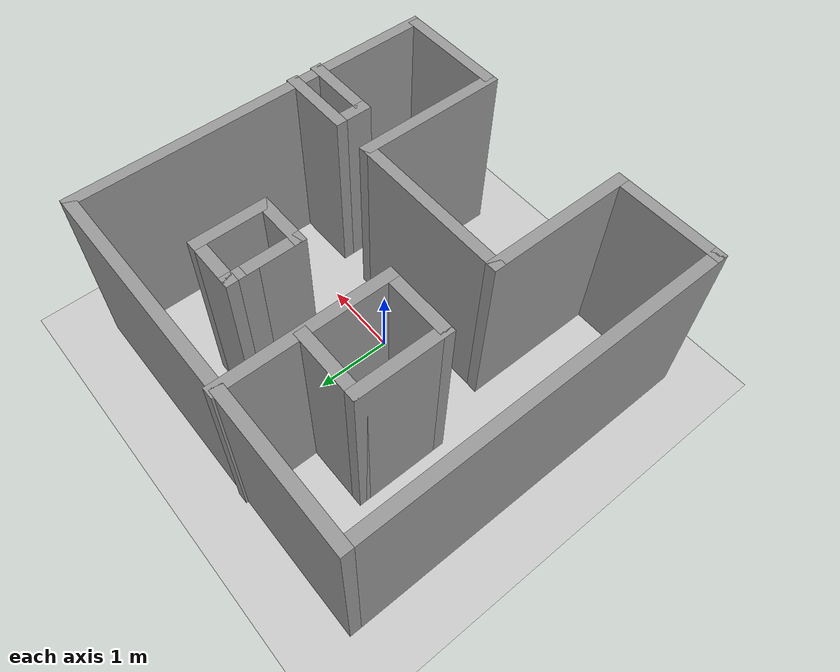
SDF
<sdf version='1.4'>
  <world name='default'>
    <!-- A global light source -->
    <include>
      <uri>model://sun</uri>
    </include>

    <!-- A ground plane -->
    <include>
      <uri>model://ground_plane</uri>
    </include>

    <physics type="ode">
      <real_time_update_rate>1000.0</real_time_update_rate>
      <max_step_size>0.001</max_step_size>
      <real_time_factor>1</real_time_factor>
      <ode>
        <solver>
          <type>quick</type>
          <iters>150</iters>
          <precon_iters>0</precon_iters>
          <sor>1.400000</sor>
          <use_dynamic_moi_rescaling>1</use_dynamic_moi_rescaling>
        </solver>
        <constraints>
          <cfm>0.00001</cfm>
          <erp>0.2</erp>
          <contact_max_correcting_vel>2000.000000</contact_max_correcting_vel>
          <contact_surface_layer>0.01000</contact_surface_layer>
        </constraints>
      </ode>
    </physics>

    <!-- Load model -->

    <include>
      <uri>model://LabWorld</uri>
    </include>

    <scene>
      <ambient>0.4 0.4 0.4 1</ambient>
      <background>0.7 0.7 0.7 1</background>
      <shadows>true</shadows>
    </scene>

    <gui fullscreen='0'>
      <camera name='user_camera'>
        <pose>0.0 0.0 17.0 0 1.5708 0</pose>
        <view_controller>orbit</view_controller>
      </camera>
    </gui>
  </world>
</sdf>

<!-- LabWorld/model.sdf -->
<sdf version='1.6'>
  <model name='LabWorld'>
    <pose frame=''>-0.094819 0.079998 0 0 -0 0</pose>
    <link name='Wall_53'>
      <collision name='Wall_53_Collision'>
        <geometry>
          <box>
            <size>5 0.15 2.5</size>
          </box>
        </geometry>
        <pose frame=''>0 0 1.25 0 -0 0</pose>
      </collision>
      <visual name='Wall_53_Visual'>
        <pose frame=''>0 0 1.25 0 -0 0</pose>
        <geometry>
          <box>
            <size>5 0.15 2.5</size>
          </box>
        </geometry>
        <material>
          <script>
            <uri>file://media/materials/scripts/gazebo.material</uri>
            <name>Gazebo/Grey</name>
          </script>
          <ambient>1 1 1 1</ambient>
        </material>
        <meta>
          <layer>0</layer>
        </meta>
      </visual>
      <pose frame=''>-0.01624 2.41094 0 0 -0 0</pose>
    </link>
    <link name='Wall_55'>
      <collision name='Wall_55_Collision'>
        <geometry>
          <box>
            <size>5 0.15 2.5</size>
          </box>
        </geometry>
        <pose frame=''>0 0 1.25 0 -0 0</pose>
      </collision>
      <visual name='Wall_55_Visual'>
        <pose frame=''>0 0 1.25 0 -0 0</pose>
        <geometry>
          <box>
            <size>5 0.15 2.5</size>
          </box>
        </geometry>
        <material>
          <script>
            <uri>file://media/materials/scripts/gazebo.material</uri>
            <name>Gazebo/Grey</name>
          </script>
          <ambient>1 1 1 1</ambient>
        </material>
        <meta>
          <layer>0</layer>
        </meta>
      </visual>
      <pose frame=''>-2.44124 -0.014064 0 0 -0 -1.5708</pose>
    </link>
    <link name='Wall_56'>
      <collision name='Wall_56_Collision'>
        <geometry>
          <box>
            <size>1.5 0.15 2.5</size>
          </box>
        </geometry>
        <pose frame=''>0 0 1.25 0 -0 0</pose>
      </collision>
      <visual name='Wall_56_Visual'>
        <pose frame=''>0 0 1.25 0 -0 0</pose>
        <geometry>
          <box>
            <size>1.5 0.15 2.5</size>
          </box>
        </geometry>
        <material>
          <script>
            <uri>file://media/materials/scripts/gazebo.material</uri>
            <name>Gazebo/Grey</name>
          </script>
          <ambient>1 1 1 1</ambient>
        </material>
        <meta>
          <layer>0</layer>
        </meta>
      </visual>
      <pose frame=''>-1.76624 -2.43906 0 0 -0 0</pose>
    </link>
    <link name='Wall_62'>
      <collision name='Wall_62_Collision'>
        <geometry>
          <box>
            <size>2 0.15 2.5</size>
          </box>
        </geometry>
        <pose frame=''>0 0 1.25 0 -0 0</pose>
      </collision>
      <visual name='Wall_62_Visual'>
        <pose frame=''>0 0 1.25 0 -0 0</pose>
        <geometry>
          <box>
            <size>2 0.15 2.5</size>
          </box>
        </geometry>
        <material>
          <script>
            <uri>file://media/materials/scripts/gazebo.material</uri>
            <name>Gazebo/Grey</name>
          </script>
          <ambient>1 1 1 1</ambient>
        </material>
        <meta>
          <layer>0</layer>
        </meta>
      </visual>
      <pose frame=''>-1.09124 -1.51406 0 0 -0 1.5708</pose>
    </link>
    <link name='Wall_63'>
      <collision name='Wall_63_Collision'>
        <geometry>
          <box>
            <size>2.25 0.15 2.5</size>
          </box>
        </geometry>
        <pose frame=''>0 0 1.25 0 -0 0</pose>
      </collision>
      <visual name='Wall_63_Visual'>
        <pose frame=''>0 0 1.25 0 -0 0</pose>
        <geometry>
          <box>
            <size>2.25 0.15 2.5</size>
          </box>
        </geometry>
        <material>
          <script>
            <uri>file://media/materials/scripts/gazebo.material</uri>
            <name>Gazebo/Grey</name>
          </script>
          <ambient>1 1 1 1</ambient>
        </material>
        <meta>
          <layer>0</layer>
        </meta>
      </visual>
      <pose frame=''>-0.04124 -0.589064 0 0 -0 0</pose>
    </link>
    <link name='Wall_64'>
      <collision name='Wall_64_Collision'>
        <geometry>
          <box>
            <size>2 0.15 2.5</size>
          </box>
        </geometry>
        <pose frame=''>0 0 1.25 0 -0 0</pose>
      </collision>
      <visual name='Wall_64_Visual'>
        <pose frame=''>0 0 1.25 0 -0 0</pose>
        <geometry>
          <box>
            <size>2 0.15 2.5</size>
          </box>
        </geometry>
        <material>
          <script>
            <uri>file://media/materials/scripts/gazebo.material</uri>
            <name>Gazebo/Grey</name>
          </script>
          <ambient>1 1 1 1</ambient>
        </material>
        <meta>
          <layer>0</layer>
        </meta>
      </visual>
      <pose frame=''>1.00876 -1.51406 0 0 -0 -1.5708</pose>
    </link>
    <link name='Wall_65'>
      <collision name='Wall_65_Collision'>
        <geometry>
          <box>
            <size>1.5 0.15 2.5</size>
          </box>
        </geometry>
        <pose frame=''>0 0 1.25 0 -0 0</pose>
      </collision>
      <visual name='Wall_65_Visual'>
        <pose frame=''>0 0 1.25 0 -0 0</pose>
        <geometry>
          <box>
            <size>1.5 0.15 2.5</size>
          </box>
        </geometry>
        <material>
          <script>
            <uri>file://media/materials/scripts/gazebo.material</uri>
            <name>Gazebo/Grey</name>
          </script>
          <ambient>1 1 1 1</ambient>
        </material>
        <meta>
          <layer>0</layer>
        </meta>
      </visual>
      <pose frame=''>1.68376 -2.43906 0 0 -0 0</pose>
    </link>
    <link name='Wall_68'>
      <collision name='Wall_68_Collision'>
        <geometry>
          <box>
            <size>5 0.15 2.5</size>
          </box>
        </geometry>
        <pose frame=''>0 0 1.25 0 -0 0</pose>
      </collision>
      <visual name='Wall_68_Visual'>
        <pose frame=''>0 0 1.25 0 -0 0</pose>
        <geometry>
          <box>
            <size>5 0.15 2.5</size>
          </box>
        </geometry>
        <material>
          <script>
            <uri>file://media/materials/scripts/gazebo.material</uri>
            <name>Gazebo/Grey</name>
          </script>
          <ambient>1 1 1 1</ambient>
        </material>
        <meta>
          <layer>0</layer>
        </meta>
      </visual>
      <pose frame=''>2.40876 -0.014064 0 0 -0 -1.5708</pose>
    </link>
    <link name='Wall_70'>
      <collision name='Wall_70_Collision'>
        <geometry>
          <box>
            <size>1 0.15 2.5</size>
          </box>
        </geometry>
        <pose frame=''>0 0 1.25 0 -0 0</pose>
      </collision>
      <visual name='Wall_70_Visual'>
        <pose frame=''>0 0 1.25 0 -0 0</pose>
        <geometry>
          <box>
            <size>1 0.15 2.5</size>
          </box>
        </geometry>
        <material>
          <script>
            <uri>file://media/materials/scripts/gazebo.material</uri>
            <name>Gazebo/Grey</name>
          </script>
          <ambient>1 1 1 1</ambient>
        </material>
        <meta>
          <layer>0</layer>
        </meta>
      </visual>
      <pose frame=''>2.01624 -0.599994 0 0 -0 3.14159</pose>
    </link>
    <link name='Wall_71'>
      <collision name='Wall_71_Collision'>
        <geometry>
          <box>
            <size>0.5 0.15 2.5</size>
          </box>
        </geometry>
        <pose frame=''>0 0 1.25 0 -0 0</pose>
      </collision>
      <visual name='Wall_71_Visual'>
        <pose frame=''>0 0 1.25 0 -0 0</pose>
        <geometry>
          <box>
            <size>0.5 0.15 2.5</size>
          </box>
        </geometry>
        <material>
          <script>
            <uri>file://media/materials/scripts/gazebo.material</uri>
            <name>Gazebo/Grey</name>
          </script>
          <ambient>1 1 1 1</ambient>
        </material>
        <meta>
          <layer>0</layer>
        </meta>
      </visual>
      <pose frame=''>1.59124 -0.774994 0 0 -0 -1.5708</pose>
    </link>
    <link name='Wall_72'>
      <collision name='Wall_72_Collision'>
        <geometry>
          <box>
            <size>1 0.15 2.5</size>
          </box>
        </geometry>
        <pose frame=''>0 0 1.25 0 -0 0</pose>
      </collision>
      <visual name='Wall_72_Visual'>
        <pose frame=''>0 0 1.25 0 -0 0</pose>
        <geometry>
          <box>
            <size>1 0.15 2.5</size>
          </box>
        </geometry>
        <material>
          <script>
            <uri>file://media/materials/scripts/gazebo.material</uri>
            <name>Gazebo/Grey</name>
          </script>
          <ambient>1 1 1 1</ambient>
        </material>
        <meta>
          <layer>0</layer>
        </meta>
      </visual>
      <pose frame=''>2.01624 -0.949994 0 0 -0 0</pose>
    </link>
    <link name='Wall_79'>
      <collision name='Wall_79_Collision'>
        <geometry>
          <box>
            <size>0.75 0.15 2.5</size>
          </box>
        </geometry>
        <pose frame=''>0 0 1.25 0 -0 0</pose>
      </collision>
      <visual name='Wall_79_Visual'>
        <pose frame=''>0 0 1.25 0 -0 0</pose>
        <geometry>
          <box>
            <size>0.75 0.15 2.5</size>
          </box>
        </geometry>
        <material>
          <script>
            <uri>file://media/materials/scripts/gazebo.material</uri>
            <name>Gazebo/Grey</name>
          </script>
          <ambient>1 1 1 1</ambient>
        </material>
        <meta>
          <layer>0</layer>
        </meta>
      </visual>
      <pose frame=''>0.456884 1.09583 0 0 -0 -1.5708</pose>
    </link>
    <link name='Wall_80'>
      <collision name='Wall_80_Collision'>
        <geometry>
          <box>
            <size>0.75 0.15 2.5</size>
          </box>
        </geometry>
        <pose frame=''>0 0 1.25 0 -0 0</pose>
      </collision>
      <visual name='Wall_80_Visual'>
        <pose frame=''>0 0 1.25 0 -0 0</pose>
        <geometry>
          <box>
            <size>0.75 0.15 2.5</size>
          </box>
        </geometry>
        <material>
          <script>
            <uri>file://media/materials/scripts/gazebo.material</uri>
            <name>Gazebo/Grey</name>
          </script>
          <ambient>1 1 1 1</ambient>
        </material>
        <meta>
          <layer>0</layer>
        </meta>
      </visual>
      <pose frame=''>0.756884 0.795827 0 0 -0 0</pose>
    </link>
    <link name='Wall_81'>
      <collision name='Wall_81_Collision'>
        <geometry>
          <box>
            <size>1 0.15 2.5</size>
          </box>
        </geometry>
        <pose frame=''>0 0 1.25 0 -0 0</pose>
      </collision>
      <visual name='Wall_81_Visual'>
        <pose frame=''>0 0 1.25 0 -0 0</pose>
        <geometry>
          <box>
            <size>1 0.15 2.5</size>
          </box>
        </geometry>
        <material>
          <script>
            <uri>file://media/materials/scripts/gazebo.material</uri>
            <name>Gazebo/Grey</name>
          </script>
          <ambient>1 1 1 1</ambient>
        </material>
        <meta>
          <layer>0</layer>
        </meta>
      </visual>
      <pose frame=''>1.05688 1.22083 0 0 -0 1.5708</pose>
    </link>
    <link name='Wall_82'>
      <collision name='Wall_82_Collision'>
        <geometry>
          <box>
            <size>0.75 0.15 2.5</size>
          </box>
        </geometry>
        <pose frame=''>0 0 1.25 0 -0 0</pose>
      </collision>
      <visual name='Wall_82_Visual'>
        <pose frame=''>0 0 1.25 0 -0 0</pose>
        <geometry>
          <box>
            <size>0.75 0.15 2.5</size>
          </box>
        </geometry>
        <material>
          <script>
            <uri>file://media/materials/scripts/gazebo.material</uri>
            <name>Gazebo/Grey</name>
          </script>
          <ambient>1 1 1 1</ambient>
        </material>
        <meta>
          <layer>0</layer>
        </meta>
      </visual>
      <pose frame=''>0.756884 1.64583 0 0 -0 3.14159</pose>
    </link>
    <link name='Wall_83'>
      <collision name='Wall_83_Collision'>
        <geometry>
          <box>
            <size>0.4 0.15 2.5</size>
          </box>
        </geometry>
        <pose frame=''>0 0 1.25 0 -0 0</pose>
      </collision>
      <visual name='Wall_83_Visual'>
        <pose frame=''>0 0 1.25 0 -0 0</pose>
        <geometry>
          <box>
            <size>0.4 0.15 2.5</size>
          </box>
        </geometry>
        <material>
          <script>
            <uri>file://media/materials/scripts/gazebo.material</uri>
            <name>Gazebo/Grey</name>
          </script>
          <ambient>1 1 1 1</ambient>
        </material>
        <meta>
          <layer>0</layer>
        </meta>
      </visual>
      <pose frame=''>0.456884 1.52083 0 0 -0 -1.5708</pose>
    </link>
    <link name='Wall_85'>
      <collision name='Wall_85_Collision'>
        <geometry>
          <box>
            <size>2.25 0.15 2.5</size>
          </box>
        </geometry>
        <pose frame=''>0 0 1.25 0 -0 0</pose>
      </collision>
      <visual name='Wall_85_Visual'>
        <pose frame=''>0 0 1.25 0 -0 0</pose>
        <geometry>
          <box>
            <size>2.25 0.15 2.5</size>
          </box>
        </geometry>
        <material>
          <script>
            <uri>file://media/materials/scripts/gazebo.material</uri>
            <name>Gazebo/Grey</name>
          </script>
          <ambient>1 1 1 1</ambient>
        </material>
        <meta>
          <layer>0</layer>
        </meta>
      </visual>
      <pose frame=''>-0.517572 1.38906 0 0 -0 -1.5708</pose>
    </link>
    <link name='Wall_86'>
      <collision name='Wall_86_Collision'>
        <geometry>
          <box>
            <size>1 0.15 2.5</size>
          </box>
        </geometry>
        <pose frame=''>0 0 1.25 0 -0 0</pose>
      </collision>
      <visual name='Wall_86_Visual'>
        <pose frame=''>0 0 1.25 0 -0 0</pose>
        <geometry>
          <box>
            <size>1 0.15 2.5</size>
          </box>
        </geometry>
        <material>
          <script>
            <uri>file://media/materials/scripts/gazebo.material</uri>
            <name>Gazebo/Grey</name>
          </script>
          <ambient>1 1 1 1</ambient>
        </material>
        <meta>
          <layer>0</layer>
        </meta>
      </visual>
      <pose frame=''>-0.942572 0.339064 0 0 -0 3.14159</pose>
    </link>
    <link name='Wall_87'>
      <collision name='Wall_87_Collision'>
        <geometry>
          <box>
            <size>1.25 0.15 2.5</size>
          </box>
        </geometry>
        <pose frame=''>0 0 1.25 0 -0 0</pose>
      </collision>
      <visual name='Wall_87_Visual'>
        <pose frame=''>0 0 1.25 0 -0 0</pose>
        <geometry>
          <box>
            <size>1.25 0.15 2.5</size>
          </box>
        </geometry>
        <material>
          <script>
            <uri>file://media/materials/scripts/gazebo.material</uri>
            <name>Gazebo/Grey</name>
          </script>
          <ambient>1 1 1 1</ambient>
        </material>
        <meta>
          <layer>0</layer>
        </meta>
      </visual>
      <pose frame=''>-1.36757 0.889064 0 0 -0 1.5708</pose>
    </link>
    <link name='Wall_88'>
      <collision name='Wall_88_Collision'>
        <geometry>
          <box>
            <size>1 0.15 2.5</size>
          </box>
        </geometry>
        <pose frame=''>0 0 1.25 0 -0 0</pose>
      </collision>
      <visual name='Wall_88_Visual'>
        <pose frame=''>0 0 1.25 0 -0 0</pose>
        <geometry>
          <box>
            <size>1 0.15 2.5</size>
          </box>
        </geometry>
        <material>
          <script>
            <uri>file://media/materials/scripts/gazebo.material</uri>
            <name>Gazebo/Grey</name>
          </script>
          <ambient>1 1 1 1</ambient>
        </material>
        <meta>
          <layer>0</layer>
        </meta>
      </visual>
      <pose frame=''>-0.942572 1.43906 0 0 -0 0</pose>
    </link>
    <static>1</static>
  </model>
</sdf>
